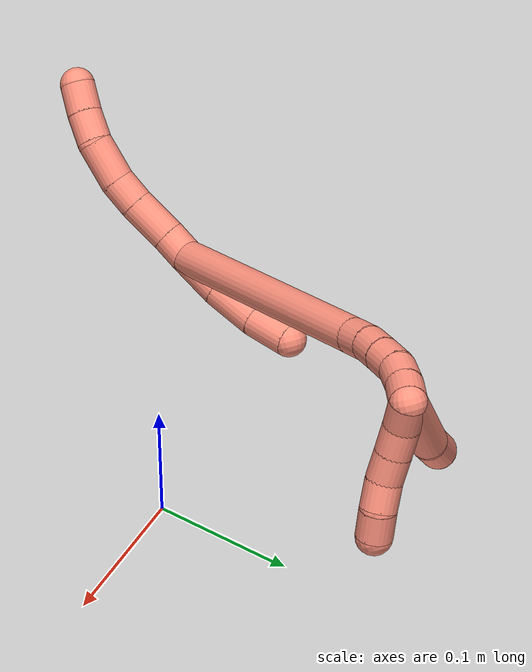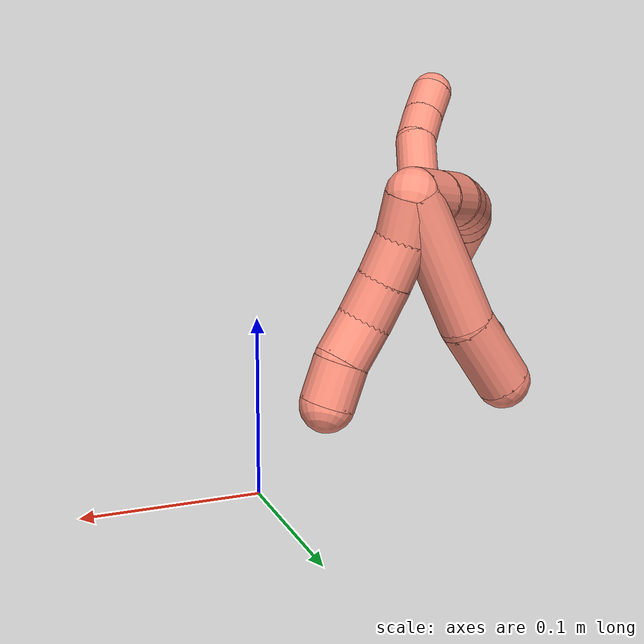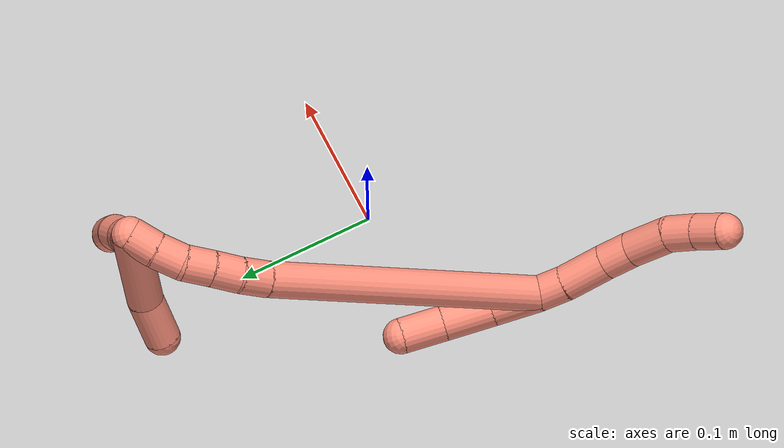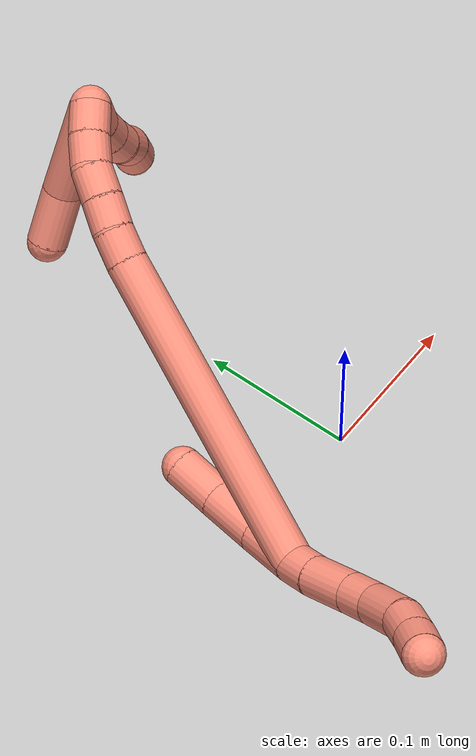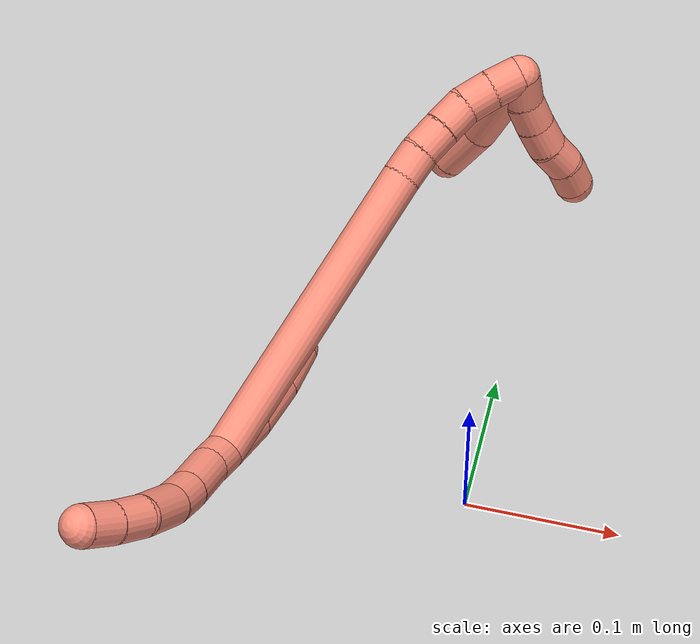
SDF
<sdf version="1.7">
 <world name="default">
  <model name="16">
   <static>0</static>
   <link name="16">
    <collision name="collision-cylinder-e_1_2_8">
     <pose>0.000405 -0.005437 0.008787 0.55411 0.039223 0.011155</pose>
     <geometry><cylinder><radius>0.0125</radius><length>0.020681</length></cylinder></geometry>
     <surface>
      <friction><ode><mu>1.16</mu><mu2>1.16</mu2><slip1>0</slip1><slip2>0</slip2></ode></friction>
      <contact><ode><kp>1e+06</kp><kd>1</kd><max_vel>0</max_vel><min_depth>0.001</min_depth></ode></contact>
     </surface>
    </collision>
    <visual name="visual-cylinder-e_1_2_8">
     <pose>0.000405 -0.005437 0.008787 0.55411 0.039223 0.011155</pose>
     <geometry><cylinder><radius>0.0125</radius><length>0.020681</length></cylinder></geometry>
     <material><ambient>1 0.576471 0.494118 1</ambient></material>
    </visual>
    <collision name="collision-cylinder-e_2_8_9">
     <pose>0.003086 -0.019195 0.031133 0.550406 0.142035 0.040168</pose>
     <geometry><cylinder><radius>0.0125</radius><length>0.032144</length></cylinder></geometry>
     <surface>
      <friction><ode><mu>1.16</mu><mu2>1.16</mu2><slip1>0</slip1><slip2>0</slip2></ode></friction>
      <contact><ode><kp>1e+06</kp><kd>1</kd><max_vel>0</max_vel><min_depth>0.001</min_depth></ode></contact>
     </surface>
    </collision>
    <visual name="visual-cylinder-e_2_8_9">
     <pose>0.003086 -0.019195 0.031133 0.550406 0.142035 0.040168</pose>
     <geometry><cylinder><radius>0.0125</radius><length>0.032144</length></cylinder></geometry>
     <material><ambient>1 0.576471 0.494118 1</ambient></material>
    </visual>
    <collision name="collision-cylinder-e_3_9_10">
     <pose>0.006572 -0.032239 0.054157 0.462884 0.11403 0.0269</pose>
     <geometry><cylinder><radius>0.0125</radius><length>0.021291</length></cylinder></geometry>
     <surface>
      <friction><ode><mu>1.16</mu><mu2>1.16</mu2><slip1>0</slip1><slip2>0</slip2></ode></friction>
      <contact><ode><kp>1e+06</kp><kd>1</kd><max_vel>0</max_vel><min_depth>0.001</min_depth></ode></contact>
     </surface>
    </collision>
    <visual name="visual-cylinder-e_3_9_10">
     <pose>0.006572 -0.032239 0.054157 0.462884 0.11403 0.0269</pose>
     <geometry><cylinder><radius>0.0125</radius><length>0.021291</length></cylinder></geometry>
     <material><ambient>1 0.576471 0.494118 1</ambient></material>
    </visual>
    <collision name="collision-cylinder-e_4_10_11">
     <pose>0.008971 -0.041401 0.078879 0.283123 0.074599 0.010636</pose>
     <geometry><cylinder><radius>0.0125</radius><length>0.031873</length></cylinder></geometry>
     <surface>
      <friction><ode><mu>1.16</mu><mu2>1.16</mu2><slip1>0</slip1><slip2>0</slip2></ode></friction>
      <contact><ode><kp>1e+06</kp><kd>1</kd><max_vel>0</max_vel><min_depth>0.001</min_depth></ode></contact>
     </surface>
    </collision>
    <visual name="visual-cylinder-e_4_10_11">
     <pose>0.008971 -0.041401 0.078879 0.283123 0.074599 0.010636</pose>
     <geometry><cylinder><radius>0.0125</radius><length>0.031873</length></cylinder></geometry>
     <material><ambient>1 0.576471 0.494118 1</ambient></material>
    </visual>
    <collision name="collision-cylinder-e_5_11_12">
     <pose>0.008087 -0.048389 0.104749 0.235687 -0.187685 -0.022285</pose>
     <geometry><cylinder><radius>0.0125</radius><length>0.022215</length></cylinder></geometry>
     <surface>
      <friction><ode><mu>1.16</mu><mu2>1.16</mu2><slip1>0</slip1><slip2>0</slip2></ode></friction>
      <contact><ode><kp>1e+06</kp><kd>1</kd><max_vel>0</max_vel><min_depth>0.001</min_depth></ode></contact>
     </surface>
    </collision>
    <visual name="visual-cylinder-e_5_11_12">
     <pose>0.008087 -0.048389 0.104749 0.235687 -0.187685 -0.022285</pose>
     <geometry><cylinder><radius>0.0125</radius><length>0.022215</length></cylinder></geometry>
     <material><ambient>1 0.576471 0.494118 1</ambient></material>
    </visual>
    <collision name="collision-cylinder-e_6_12_6">
     <pose>0.003723 -0.052458 0.125906 0.143193 -0.211827 -0.015249</pose>
     <geometry><cylinder><radius>0.0125</radius><length>0.021797</length></cylinder></geometry>
     <surface>
      <friction><ode><mu>1.16</mu><mu2>1.16</mu2><slip1>0</slip1><slip2>0</slip2></ode></friction>
      <contact><ode><kp>1e+06</kp><kd>1</kd><max_vel>0</max_vel><min_depth>0.001</min_depth></ode></contact>
     </surface>
    </collision>
    <visual name="visual-cylinder-e_6_12_6">
     <pose>0.003723 -0.052458 0.125906 0.143193 -0.211827 -0.015249</pose>
     <geometry><cylinder><radius>0.0125</radius><length>0.021797</length></cylinder></geometry>
     <material><ambient>1 0.576471 0.494118 1</ambient></material>
    </visual>
    <collision name="collision-cylinder-e_1_2_13">
     <pose>0.000875 0.010206 -0.013424 -2.49154 0.051814 -0.153493</pose>
     <geometry><cylinder><radius>0.0125</radius><length>0.033771</length></cylinder></geometry>
     <surface>
      <friction><ode><mu>1.16</mu><mu2>1.16</mu2><slip1>0</slip1><slip2>0</slip2></ode></friction>
      <contact><ode><kp>1e+06</kp><kd>1</kd><max_vel>0</max_vel><min_depth>0.001</min_depth></ode></contact>
     </surface>
    </collision>
    <visual name="visual-cylinder-e_1_2_13">
     <pose>0.000875 0.010206 -0.013424 -2.49154 0.051814 -0.153493</pose>
     <geometry><cylinder><radius>0.0125</radius><length>0.033771</length></cylinder></geometry>
     <material><ambient>1 0.576471 0.494118 1</ambient></material>
    </visual>
    <collision name="collision-cylinder-e_2_13_14">
     <pose>0.003155 0.03317 -0.039247 -2.34194 0.078855 -0.186156</pose>
     <geometry><cylinder><radius>0.0125</radius><length>0.035694</length></cylinder></geometry>
     <surface>
      <friction><ode><mu>1.16</mu><mu2>1.16</mu2><slip1>0</slip1><slip2>0</slip2></ode></friction>
      <contact><ode><kp>1e+06</kp><kd>1</kd><max_vel>0</max_vel><min_depth>0.001</min_depth></ode></contact>
     </surface>
    </collision>
    <visual name="visual-cylinder-e_2_13_14">
     <pose>0.003155 0.03317 -0.039247 -2.34194 0.078855 -0.186156</pose>
     <geometry><cylinder><radius>0.0125</radius><length>0.035694</length></cylinder></geometry>
     <material><ambient>1 0.576471 0.494118 1</ambient></material>
    </visual>
    <collision name="collision-cylinder-e_3_14_5">
     <pose>0.006171 0.058431 -0.060261 -2.17409 0.105646 -0.200593</pose>
     <geometry><cylinder><radius>0.0125</radius><length>0.030536</length></cylinder></geometry>
     <surface>
      <friction><ode><mu>1.16</mu><mu2>1.16</mu2><slip1>0</slip1><slip2>0</slip2></ode></friction>
      <contact><ode><kp>1e+06</kp><kd>1</kd><max_vel>0</max_vel><min_depth>0.001</min_depth></ode></contact>
     </surface>
    </collision>
    <visual name="visual-cylinder-e_3_14_5">
     <pose>0.006171 0.058431 -0.060261 -2.17409 0.105646 -0.200593</pose>
     <geometry><cylinder><radius>0.0125</radius><length>0.030536</length></cylinder></geometry>
     <material><ambient>1 0.576471 0.494118 1</ambient></material>
    </visual>
    <collision name="collision-cylinder-e_1_2_15">
     <pose>0.043529 0.084905 -0.029628 -1.90654 0.450807 -0.624621</pose>
     <geometry><cylinder><radius>0.0125</radius><length>0.199815</length></cylinder></geometry>
     <surface>
      <friction><ode><mu>1.16</mu><mu2>1.16</mu2><slip1>0</slip1><slip2>0</slip2></ode></friction>
      <contact><ode><kp>1e+06</kp><kd>1</kd><max_vel>0</max_vel><min_depth>0.001</min_depth></ode></contact>
     </surface>
    </collision>
    <visual name="visual-cylinder-e_1_2_15">
     <pose>0.043529 0.084905 -0.029628 -1.90654 0.450807 -0.624621</pose>
     <geometry><cylinder><radius>0.0125</radius><length>0.199815</length></cylinder></geometry>
     <material><ambient>1 0.576471 0.494118 1</ambient></material>
    </visual>
    <collision name="collision-cylinder-e_2_15_16">
     <pose>0.092213 0.178089 -0.061733 -1.86138 0.537936 -0.709011</pose>
     <geometry><cylinder><radius>0.0125</radius><length>0.020123</length></cylinder></geometry>
     <surface>
      <friction><ode><mu>1.16</mu><mu2>1.16</mu2><slip1>0</slip1><slip2>0</slip2></ode></friction>
      <contact><ode><kp>1e+06</kp><kd>1</kd><max_vel>0</max_vel><min_depth>0.001</min_depth></ode></contact>
     </surface>
    </collision>
    <visual name="visual-cylinder-e_2_15_16">
     <pose>0.092213 0.178089 -0.061733 -1.86138 0.537936 -0.709011</pose>
     <geometry><cylinder><radius>0.0125</radius><length>0.020123</length></cylinder></geometry>
     <material><ambient>1 0.576471 0.494118 1</ambient></material>
    </visual>
    <collision name="collision-cylinder-e_3_16_17">
     <pose>0.103204 0.193765 -0.067567 -1.99697 0.622868 -0.926782</pose>
     <geometry><cylinder><radius>0.0125</radius><length>0.020008</length></cylinder></geometry>
     <surface>
      <friction><ode><mu>1.16</mu><mu2>1.16</mu2><slip1>0</slip1><slip2>0</slip2></ode></friction>
      <contact><ode><kp>1e+06</kp><kd>1</kd><max_vel>0</max_vel><min_depth>0.001</min_depth></ode></contact>
     </surface>
    </collision>
    <visual name="visual-cylinder-e_3_16_17">
     <pose>0.103204 0.193765 -0.067567 -1.99697 0.622868 -0.926782</pose>
     <geometry><cylinder><radius>0.0125</radius><length>0.020008</length></cylinder></geometry>
     <material><ambient>1 0.576471 0.494118 1</ambient></material>
    </visual>
    <collision name="collision-cylinder-e_4_17_18">
     <pose>0.11471 0.208503 -0.074709 -2.04679 0.601715 -0.9417</pose>
     <geometry><cylinder><radius>0.0125</radius><length>0.020031</length></cylinder></geometry>
     <surface>
      <friction><ode><mu>1.16</mu><mu2>1.16</mu2><slip1>0</slip1><slip2>0</slip2></ode></friction>
      <contact><ode><kp>1e+06</kp><kd>1</kd><max_vel>0</max_vel><min_depth>0.001</min_depth></ode></contact>
     </surface>
    </collision>
    <visual name="visual-cylinder-e_4_17_18">
     <pose>0.11471 0.208503 -0.074709 -2.04679 0.601715 -0.9417</pose>
     <geometry><cylinder><radius>0.0125</radius><length>0.020031</length></cylinder></geometry>
     <material><ambient>1 0.576471 0.494118 1</ambient></material>
    </visual>
    <collision name="collision-cylinder-e_5_18_19">
     <pose>0.12767 0.22116 -0.082826 -2.25443 0.815822 -1.47605</pose>
     <geometry><cylinder><radius>0.0125</radius><length>0.020022</length></cylinder></geometry>
     <surface>
      <friction><ode><mu>1.16</mu><mu2>1.16</mu2><slip1>0</slip1><slip2>0</slip2></ode></friction>
      <contact><ode><kp>1e+06</kp><kd>1</kd><max_vel>0</max_vel><min_depth>0.001</min_depth></ode></contact>
     </surface>
    </collision>
    <visual name="visual-cylinder-e_5_18_19">
     <pose>0.12767 0.22116 -0.082826 -2.25443 0.815822 -1.47605</pose>
     <geometry><cylinder><radius>0.0125</radius><length>0.020022</length></cylinder></geometry>
     <material><ambient>1 0.576471 0.494118 1</ambient></material>
    </visual>
    <collision name="collision-cylinder-e_6_19_1">
     <pose>0.142931 0.230939 -0.091232 -2.31082 0.922284 -1.68969</pose>
     <geometry><cylinder><radius>0.0125</radius><length>0.020001</length></cylinder></geometry>
     <surface>
      <friction><ode><mu>1.16</mu><mu2>1.16</mu2><slip1>0</slip1><slip2>0</slip2></ode></friction>
      <contact><ode><kp>1e+06</kp><kd>1</kd><max_vel>0</max_vel><min_depth>0.001</min_depth></ode></contact>
     </surface>
    </collision>
    <visual name="visual-cylinder-e_6_19_1">
     <pose>0.142931 0.230939 -0.091232 -2.31082 0.922284 -1.68969</pose>
     <geometry><cylinder><radius>0.0125</radius><length>0.020001</length></cylinder></geometry>
     <material><ambient>1 0.576471 0.494118 1</ambient></material>
    </visual>
    <collision name="collision-cylinder-e_1_1_20">
     <pose>0.148355 0.229581 -0.103029 2.49594 -0.257427 -0.73833</pose>
     <geometry><cylinder><radius>0.0125</radius><length>0.02</length></cylinder></geometry>
     <surface>
      <friction><ode><mu>1.16</mu><mu2>1.16</mu2><slip1>0</slip1><slip2>0</slip2></ode></friction>
      <contact><ode><kp>1e+06</kp><kd>1</kd><max_vel>0</max_vel><min_depth>0.001</min_depth></ode></contact>
     </surface>
    </collision>
    <visual name="visual-cylinder-e_1_1_20">
     <pose>0.148355 0.229581 -0.103029 2.49594 -0.257427 -0.73833</pose>
     <geometry><cylinder><radius>0.0125</radius><length>0.02</length></cylinder></geometry>
     <material><ambient>1 0.576471 0.494118 1</ambient></material>
    </visual>
    <collision name="collision-cylinder-e_2_20_21">
     <pose>0.145463 0.218171 -0.119037 2.54795 -0.034647 -0.113169</pose>
     <geometry><cylinder><radius>0.0125</radius><length>0.02</length></cylinder></geometry>
     <surface>
      <friction><ode><mu>1.16</mu><mu2>1.16</mu2><slip1>0</slip1><slip2>0</slip2></ode></friction>
      <contact><ode><kp>1e+06</kp><kd>1</kd><max_vel>0</max_vel><min_depth>0.001</min_depth></ode></contact>
     </surface>
    </collision>
    <visual name="visual-cylinder-e_2_20_21">
     <pose>0.145463 0.218171 -0.119037 2.54795 -0.034647 -0.113169</pose>
     <geometry><cylinder><radius>0.0125</radius><length>0.02</length></cylinder></geometry>
     <material><ambient>1 0.576471 0.494118 1</ambient></material>
    </visual>
    <collision name="collision-cylinder-e_3_21_22">
     <pose>0.145375 0.207055 -0.135651 2.55593 0.025836 0.085644</pose>
     <geometry><cylinder><radius>0.0125</radius><length>0.02</length></cylinder></geometry>
     <surface>
      <friction><ode><mu>1.16</mu><mu2>1.16</mu2><slip1>0</slip1><slip2>0</slip2></ode></friction>
      <contact><ode><kp>1e+06</kp><kd>1</kd><max_vel>0</max_vel><min_depth>0.001</min_depth></ode></contact>
     </surface>
    </collision>
    <visual name="visual-cylinder-e_3_21_22">
     <pose>0.145375 0.207055 -0.135651 2.55593 0.025836 0.085644</pose>
     <geometry><cylinder><radius>0.0125</radius><length>0.02</length></cylinder></geometry>
     <material><ambient>1 0.576471 0.494118 1</ambient></material>
    </visual>
    <collision name="collision-cylinder-e_4_22_23">
     <pose>0.147189 0.197613 -0.153051 2.73397 0.156191 0.723886</pose>
     <geometry><cylinder><radius>0.0125</radius><length>0.02</length></cylinder></geometry>
     <surface>
      <friction><ode><mu>1.16</mu><mu2>1.16</mu2><slip1>0</slip1><slip2>0</slip2></ode></friction>
      <contact><ode><kp>1e+06</kp><kd>1</kd><max_vel>0</max_vel><min_depth>0.001</min_depth></ode></contact>
     </surface>
    </collision>
    <visual name="visual-cylinder-e_4_22_23">
     <pose>0.147189 0.197613 -0.153051 2.73397 0.156191 0.723886</pose>
     <geometry><cylinder><radius>0.0125</radius><length>0.02</length></cylinder></geometry>
     <material><ambient>1 0.576471 0.494118 1</ambient></material>
    </visual>
    <collision name="collision-cylinder-e_5_23_4">
     <pose>0.147903 0.18922 -0.171022 2.67555 -0.08421 -0.351366</pose>
     <geometry><cylinder><radius>0.0125</radius><length>0.02</length></cylinder></geometry>
     <surface>
      <friction><ode><mu>1.16</mu><mu2>1.16</mu2><slip1>0</slip1><slip2>0</slip2></ode></friction>
      <contact><ode><kp>1e+06</kp><kd>1</kd><max_vel>0</max_vel><min_depth>0.001</min_depth></ode></contact>
     </surface>
    </collision>
    <visual name="visual-cylinder-e_5_23_4">
     <pose>0.147903 0.18922 -0.171022 2.67555 -0.08421 -0.351366</pose>
     <geometry><cylinder><radius>0.0125</radius><length>0.02</length></cylinder></geometry>
     <material><ambient>1 0.576471 0.494118 1</ambient></material>
    </visual>
    <collision name="collision-cylinder-e_1_1_24">
     <pose>0.126696 0.225216 -0.113949 2.64168 -0.850448 -2.11492</pose>
     <geometry><cylinder><radius>0.0125</radius><length>0.064412</length></cylinder></geometry>
     <surface>
      <friction><ode><mu>1.16</mu><mu2>1.16</mu2><slip1>0</slip1><slip2>0</slip2></ode></friction>
      <contact><ode><kp>1e+06</kp><kd>1</kd><max_vel>0</max_vel><min_depth>0.001</min_depth></ode></contact>
     </surface>
    </collision>
    <visual name="visual-cylinder-e_1_1_24">
     <pose>0.126696 0.225216 -0.113949 2.64168 -0.850448 -2.11492</pose>
     <geometry><cylinder><radius>0.0125</radius><length>0.064412</length></cylinder></geometry>
     <material><ambient>1 0.576471 0.494118 1</ambient></material>
    </visual>
    <collision name="collision-cylinder-e_2_24_3">
     <pose>0.08726 0.208949 -0.139496 2.41907 -1.0274 -1.96145</pose>
     <geometry><cylinder><radius>0.0125</radius><length>0.035588</length></cylinder></geometry>
     <surface>
      <friction><ode><mu>1.16</mu><mu2>1.16</mu2><slip1>0</slip1><slip2>0</slip2></ode></friction>
      <contact><ode><kp>1e+06</kp><kd>1</kd><max_vel>0</max_vel><min_depth>0.001</min_depth></ode></contact>
     </surface>
    </collision>
    <visual name="visual-cylinder-e_2_24_3">
     <pose>0.08726 0.208949 -0.139496 2.41907 -1.0274 -1.96145</pose>
     <geometry><cylinder><radius>0.0125</radius><length>0.035588</length></cylinder></geometry>
     <material><ambient>1 0.576471 0.494118 1</ambient></material>
    </visual>
    <collision name="collision-sphere-3">
     <pose>0.072029 0.202865 -0.146397 0 -0 0</pose>
     <geometry><sphere><radius>0.0125</radius></sphere></geometry>
     <surface>
      <friction><ode><mu>1.16</mu><mu2>1.16</mu2><slip1>0</slip1><slip2>0</slip2></ode></friction>
      <contact><ode><kp>1e+06</kp><kd>1</kd><max_vel>0</max_vel><min_depth>0.001</min_depth></ode></contact>
     </surface>
    </collision>
    <visual name="visual-sphere-3">
     <pose>0.072029 0.202865 -0.146397 0 -0 0</pose>
     <geometry><sphere><radius>0.0125</radius></sphere></geometry>
     <material><ambient>1 0.576471 0.494118 1</ambient></material>
    </visual>
    <collision name="collision-sphere-24">
     <pose>0.102491 0.215033 -0.132594 0 -0 0</pose>
     <geometry><sphere><radius>0.0125</radius></sphere></geometry>
     <surface>
      <friction><ode><mu>1.16</mu><mu2>1.16</mu2><slip1>0</slip1><slip2>0</slip2></ode></friction>
      <contact><ode><kp>1e+06</kp><kd>1</kd><max_vel>0</max_vel><min_depth>0.001</min_depth></ode></contact>
     </surface>
    </collision>
    <visual name="visual-sphere-24">
     <pose>0.102491 0.215033 -0.132594 0 -0 0</pose>
     <geometry><sphere><radius>0.0125</radius></sphere></geometry>
     <material><ambient>1 0.576471 0.494118 1</ambient></material>
    </visual>
    <collision name="collision-sphere-4">
     <pose>0.147062 0.184742 -0.179924 0 -0 0</pose>
     <geometry><sphere><radius>0.0125</radius></sphere></geometry>
     <surface>
      <friction><ode><mu>1.16</mu><mu2>1.16</mu2><slip1>0</slip1><slip2>0</slip2></ode></friction>
      <contact><ode><kp>1e+06</kp><kd>1</kd><max_vel>0</max_vel><min_depth>0.001</min_depth></ode></contact>
     </surface>
    </collision>
    <visual name="visual-sphere-4">
     <pose>0.147062 0.184742 -0.179924 0 -0 0</pose>
     <geometry><sphere><radius>0.0125</radius></sphere></geometry>
     <material><ambient>1 0.576471 0.494118 1</ambient></material>
    </visual>
    <collision name="collision-sphere-23">
     <pose>0.148744 0.193697 -0.16212 0 -0 0</pose>
     <geometry><sphere><radius>0.0125</radius></sphere></geometry>
     <surface>
      <friction><ode><mu>1.16</mu><mu2>1.16</mu2><slip1>0</slip1><slip2>0</slip2></ode></friction>
      <contact><ode><kp>1e+06</kp><kd>1</kd><max_vel>0</max_vel><min_depth>0.001</min_depth></ode></contact>
     </surface>
    </collision>
    <visual name="visual-sphere-23">
     <pose>0.148744 0.193697 -0.16212 0 -0 0</pose>
     <geometry><sphere><radius>0.0125</radius></sphere></geometry>
     <material><ambient>1 0.576471 0.494118 1</ambient></material>
    </visual>
    <collision name="collision-sphere-22">
     <pose>0.145633 0.201529 -0.143982 0 -0 0</pose>
     <geometry><sphere><radius>0.0125</radius></sphere></geometry>
     <surface>
      <friction><ode><mu>1.16</mu><mu2>1.16</mu2><slip1>0</slip1><slip2>0</slip2></ode></friction>
      <contact><ode><kp>1e+06</kp><kd>1</kd><max_vel>0</max_vel><min_depth>0.001</min_depth></ode></contact>
     </surface>
    </collision>
    <visual name="visual-sphere-22">
     <pose>0.145633 0.201529 -0.143982 0 -0 0</pose>
     <geometry><sphere><radius>0.0125</radius></sphere></geometry>
     <material><ambient>1 0.576471 0.494118 1</ambient></material>
    </visual>
    <collision name="collision-sphere-21">
     <pose>0.145116 0.212581 -0.127321 0 -0 0</pose>
     <geometry><sphere><radius>0.0125</radius></sphere></geometry>
     <surface>
      <friction><ode><mu>1.16</mu><mu2>1.16</mu2><slip1>0</slip1><slip2>0</slip2></ode></friction>
      <contact><ode><kp>1e+06</kp><kd>1</kd><max_vel>0</max_vel><min_depth>0.001</min_depth></ode></contact>
     </surface>
    </collision>
    <visual name="visual-sphere-21">
     <pose>0.145116 0.212581 -0.127321 0 -0 0</pose>
     <geometry><sphere><radius>0.0125</radius></sphere></geometry>
     <material><ambient>1 0.576471 0.494118 1</ambient></material>
    </visual>
    <collision name="collision-sphere-20">
     <pose>0.145809 0.223762 -0.110753 0 -0 0</pose>
     <geometry><sphere><radius>0.0125</radius></sphere></geometry>
     <surface>
      <friction><ode><mu>1.16</mu><mu2>1.16</mu2><slip1>0</slip1><slip2>0</slip2></ode></friction>
      <contact><ode><kp>1e+06</kp><kd>1</kd><max_vel>0</max_vel><min_depth>0.001</min_depth></ode></contact>
     </surface>
    </collision>
    <visual name="visual-sphere-20">
     <pose>0.145809 0.223762 -0.110753 0 -0 0</pose>
     <geometry><sphere><radius>0.0125</radius></sphere></geometry>
     <material><ambient>1 0.576471 0.494118 1</ambient></material>
    </visual>
    <collision name="collision-sphere-12">
     <pose>0.006014 -0.050937 0.11536 0 -0 0</pose>
     <geometry><sphere><radius>0.0125</radius></sphere></geometry>
     <surface>
      <friction><ode><mu>1.16</mu><mu2>1.16</mu2><slip1>0</slip1><slip2>0</slip2></ode></friction>
      <contact><ode><kp>1e+06</kp><kd>1</kd><max_vel>0</max_vel><min_depth>0.001</min_depth></ode></contact>
     </surface>
    </collision>
    <visual name="visual-sphere-12">
     <pose>0.006014 -0.050937 0.11536 0 -0 0</pose>
     <geometry><sphere><radius>0.0125</radius></sphere></geometry>
     <material><ambient>1 0.576471 0.494118 1</ambient></material>
    </visual>
    <collision name="collision-sphere-11">
     <pose>0.010159 -0.045841 0.094139 0 -0 0</pose>
     <geometry><sphere><radius>0.0125</radius></sphere></geometry>
     <surface>
      <friction><ode><mu>1.16</mu><mu2>1.16</mu2><slip1>0</slip1><slip2>0</slip2></ode></friction>
      <contact><ode><kp>1e+06</kp><kd>1</kd><max_vel>0</max_vel><min_depth>0.001</min_depth></ode></contact>
     </surface>
    </collision>
    <visual name="visual-sphere-11">
     <pose>0.010159 -0.045841 0.094139 0 -0 0</pose>
     <geometry><sphere><radius>0.0125</radius></sphere></geometry>
     <material><ambient>1 0.576471 0.494118 1</ambient></material>
    </visual>
    <collision name="collision-sphere-10">
     <pose>0.007784 -0.036962 0.06362 0 -0 0</pose>
     <geometry><sphere><radius>0.0125</radius></sphere></geometry>
     <surface>
      <friction><ode><mu>1.16</mu><mu2>1.16</mu2><slip1>0</slip1><slip2>0</slip2></ode></friction>
      <contact><ode><kp>1e+06</kp><kd>1</kd><max_vel>0</max_vel><min_depth>0.001</min_depth></ode></contact>
     </surface>
    </collision>
    <visual name="visual-sphere-10">
     <pose>0.007784 -0.036962 0.06362 0 -0 0</pose>
     <geometry><sphere><radius>0.0125</radius></sphere></geometry>
     <material><ambient>1 0.576471 0.494118 1</ambient></material>
    </visual>
    <collision name="collision-sphere-9">
     <pose>0.005361 -0.027517 0.044694 0 -0 0</pose>
     <geometry><sphere><radius>0.0125</radius></sphere></geometry>
     <surface>
      <friction><ode><mu>1.16</mu><mu2>1.16</mu2><slip1>0</slip1><slip2>0</slip2></ode></friction>
      <contact><ode><kp>1e+06</kp><kd>1</kd><max_vel>0</max_vel><min_depth>0.001</min_depth></ode></contact>
     </surface>
    </collision>
    <visual name="visual-sphere-9">
     <pose>0.005361 -0.027517 0.044694 0 -0 0</pose>
     <geometry><sphere><radius>0.0125</radius></sphere></geometry>
     <material><ambient>1 0.576471 0.494118 1</ambient></material>
    </visual>
    <collision name="collision-sphere-2">
     <geometry><sphere><radius>0.0125</radius></sphere></geometry>
     <surface>
      <friction><ode><mu>1.16</mu><mu2>1.16</mu2><slip1>0</slip1><slip2>0</slip2></ode></friction>
      <contact><ode><kp>1e+06</kp><kd>1</kd><max_vel>0</max_vel><min_depth>0.001</min_depth></ode></contact>
     </surface>
    </collision>
    <visual name="visual-sphere-2">
     <geometry><sphere><radius>0.0125</radius></sphere></geometry>
     <material><ambient>1 0.576471 0.494118 1</ambient></material>
    </visual>
    <collision name="collision-sphere-19">
     <pose>0.134961 0.226479 -0.087159 0 -0 0</pose>
     <geometry><sphere><radius>0.0125</radius></sphere></geometry>
     <surface>
      <friction><ode><mu>1.16</mu><mu2>1.16</mu2><slip1>0</slip1><slip2>0</slip2></ode></friction>
      <contact><ode><kp>1e+06</kp><kd>1</kd><max_vel>0</max_vel><min_depth>0.001</min_depth></ode></contact>
     </surface>
    </collision>
    <visual name="visual-sphere-19">
     <pose>0.134961 0.226479 -0.087159 0 -0 0</pose>
     <geometry><sphere><radius>0.0125</radius></sphere></geometry>
     <material><ambient>1 0.576471 0.494118 1</ambient></material>
    </visual>
    <collision name="collision-sphere-8">
     <pose>0.000811 -0.010874 0.017573 0 -0 0</pose>
     <geometry><sphere><radius>0.0125</radius></sphere></geometry>
     <surface>
      <friction><ode><mu>1.16</mu><mu2>1.16</mu2><slip1>0</slip1><slip2>0</slip2></ode></friction>
      <contact><ode><kp>1e+06</kp><kd>1</kd><max_vel>0</max_vel><min_depth>0.001</min_depth></ode></contact>
     </surface>
    </collision>
    <visual name="visual-sphere-8">
     <pose>0.000811 -0.010874 0.017573 0 -0 0</pose>
     <geometry><sphere><radius>0.0125</radius></sphere></geometry>
     <material><ambient>1 0.576471 0.494118 1</ambient></material>
    </visual>
    <collision name="collision-sphere-6">
     <pose>0.001431 -0.053978 0.136452 0 -0 0</pose>
     <geometry><sphere><radius>0.0125</radius></sphere></geometry>
     <surface>
      <friction><ode><mu>1.16</mu><mu2>1.16</mu2><slip1>0</slip1><slip2>0</slip2></ode></friction>
      <contact><ode><kp>1e+06</kp><kd>1</kd><max_vel>0</max_vel><min_depth>0.001</min_depth></ode></contact>
     </surface>
    </collision>
    <visual name="visual-sphere-6">
     <pose>0.001431 -0.053978 0.136452 0 -0 0</pose>
     <geometry><sphere><radius>0.0125</radius></sphere></geometry>
     <material><ambient>1 0.576471 0.494118 1</ambient></material>
    </visual>
    <collision name="collision-sphere-13">
     <pose>0.001749 0.020412 -0.026847 0 -0 0</pose>
     <geometry><sphere><radius>0.0125</radius></sphere></geometry>
     <surface>
      <friction><ode><mu>1.16</mu><mu2>1.16</mu2><slip1>0</slip1><slip2>0</slip2></ode></friction>
      <contact><ode><kp>1e+06</kp><kd>1</kd><max_vel>0</max_vel><min_depth>0.001</min_depth></ode></contact>
     </surface>
    </collision>
    <visual name="visual-sphere-13">
     <pose>0.001749 0.020412 -0.026847 0 -0 0</pose>
     <geometry><sphere><radius>0.0125</radius></sphere></geometry>
     <material><ambient>1 0.576471 0.494118 1</ambient></material>
    </visual>
    <collision name="collision-sphere-14">
     <pose>0.004561 0.045929 -0.051647 0 -0 0</pose>
     <geometry><sphere><radius>0.0125</radius></sphere></geometry>
     <surface>
      <friction><ode><mu>1.16</mu><mu2>1.16</mu2><slip1>0</slip1><slip2>0</slip2></ode></friction>
      <contact><ode><kp>1e+06</kp><kd>1</kd><max_vel>0</max_vel><min_depth>0.001</min_depth></ode></contact>
     </surface>
    </collision>
    <visual name="visual-sphere-14">
     <pose>0.004561 0.045929 -0.051647 0 -0 0</pose>
     <geometry><sphere><radius>0.0125</radius></sphere></geometry>
     <material><ambient>1 0.576471 0.494118 1</ambient></material>
    </visual>
    <collision name="collision-sphere-5">
     <pose>0.007781 0.070934 -0.068875 0 -0 0</pose>
     <geometry><sphere><radius>0.0125</radius></sphere></geometry>
     <surface>
      <friction><ode><mu>1.16</mu><mu2>1.16</mu2><slip1>0</slip1><slip2>0</slip2></ode></friction>
      <contact><ode><kp>1e+06</kp><kd>1</kd><max_vel>0</max_vel><min_depth>0.001</min_depth></ode></contact>
     </surface>
    </collision>
    <visual name="visual-sphere-5">
     <pose>0.007781 0.070934 -0.068875 0 -0 0</pose>
     <geometry><sphere><radius>0.0125</radius></sphere></geometry>
     <material><ambient>1 0.576471 0.494118 1</ambient></material>
    </visual>
    <collision name="collision-sphere-15">
     <pose>0.087058 0.16981 -0.059257 0 -0 0</pose>
     <geometry><sphere><radius>0.0125</radius></sphere></geometry>
     <surface>
      <friction><ode><mu>1.16</mu><mu2>1.16</mu2><slip1>0</slip1><slip2>0</slip2></ode></friction>
      <contact><ode><kp>1e+06</kp><kd>1</kd><max_vel>0</max_vel><min_depth>0.001</min_depth></ode></contact>
     </surface>
    </collision>
    <visual name="visual-sphere-15">
     <pose>0.087058 0.16981 -0.059257 0 -0 0</pose>
     <geometry><sphere><radius>0.0125</radius></sphere></geometry>
     <material><ambient>1 0.576471 0.494118 1</ambient></material>
    </visual>
    <collision name="collision-sphere-16">
     <pose>0.097368 0.186367 -0.064208 0 -0 0</pose>
     <geometry><sphere><radius>0.0125</radius></sphere></geometry>
     <surface>
      <friction><ode><mu>1.16</mu><mu2>1.16</mu2><slip1>0</slip1><slip2>0</slip2></ode></friction>
      <contact><ode><kp>1e+06</kp><kd>1</kd><max_vel>0</max_vel><min_depth>0.001</min_depth></ode></contact>
     </surface>
    </collision>
    <visual name="visual-sphere-16">
     <pose>0.097368 0.186367 -0.064208 0 -0 0</pose>
     <geometry><sphere><radius>0.0125</radius></sphere></geometry>
     <material><ambient>1 0.576471 0.494118 1</ambient></material>
    </visual>
    <collision name="collision-sphere-17">
     <pose>0.10904 0.201164 -0.070926 0 -0 0</pose>
     <geometry><sphere><radius>0.0125</radius></sphere></geometry>
     <surface>
      <friction><ode><mu>1.16</mu><mu2>1.16</mu2><slip1>0</slip1><slip2>0</slip2></ode></friction>
      <contact><ode><kp>1e+06</kp><kd>1</kd><max_vel>0</max_vel><min_depth>0.001</min_depth></ode></contact>
     </surface>
    </collision>
    <visual name="visual-sphere-17">
     <pose>0.10904 0.201164 -0.070926 0 -0 0</pose>
     <geometry><sphere><radius>0.0125</radius></sphere></geometry>
     <material><ambient>1 0.576471 0.494118 1</ambient></material>
    </visual>
    <collision name="collision-sphere-18">
     <pose>0.120379 0.215842 -0.078493 0 -0 0</pose>
     <geometry><sphere><radius>0.0125</radius></sphere></geometry>
     <surface>
      <friction><ode><mu>1.16</mu><mu2>1.16</mu2><slip1>0</slip1><slip2>0</slip2></ode></friction>
      <contact><ode><kp>1e+06</kp><kd>1</kd><max_vel>0</max_vel><min_depth>0.001</min_depth></ode></contact>
     </surface>
    </collision>
    <visual name="visual-sphere-18">
     <pose>0.120379 0.215842 -0.078493 0 -0 0</pose>
     <geometry><sphere><radius>0.0125</radius></sphere></geometry>
     <material><ambient>1 0.576471 0.494118 1</ambient></material>
    </visual>
    <collision name="collision-sphere-1">
     <pose>0.150901 0.2354 -0.095305 0 -0 0</pose>
     <geometry><sphere><radius>0.0125</radius></sphere></geometry>
     <surface>
      <friction><ode><mu>1.16</mu><mu2>1.16</mu2><slip1>0</slip1><slip2>0</slip2></ode></friction>
      <contact><ode><kp>1e+06</kp><kd>1</kd><max_vel>0</max_vel><min_depth>0.001</min_depth></ode></contact>
     </surface>
    </collision>
    <visual name="visual-sphere-1">
     <pose>0.150901 0.2354 -0.095305 0 -0 0</pose>
     <geometry><sphere><radius>0.0125</radius></sphere></geometry>
     <material><ambient>1 0.576471 0.494118 1</ambient></material>
    </visual>
    <inertial>
     <pose>0.06321 0.105045 -0.044276 0 -0 0</pose>
     <mass>0.75</mass>
     <inertia>
      <ixx>0.000146</ixx>
      <ixy>0</ixy>
      <ixz>0</ixz>
      <iyy>-0.000358</iyy>
      <iyz>0</iyz>
      <izz>-0.000856</izz>
     </inertia>
    </inertial>
   </link>
   <pose>-0.136652 -0.063148 0.099708 0.570275 -0.454321 -0.043399</pose>
  </model>
 </world>
</sdf>
